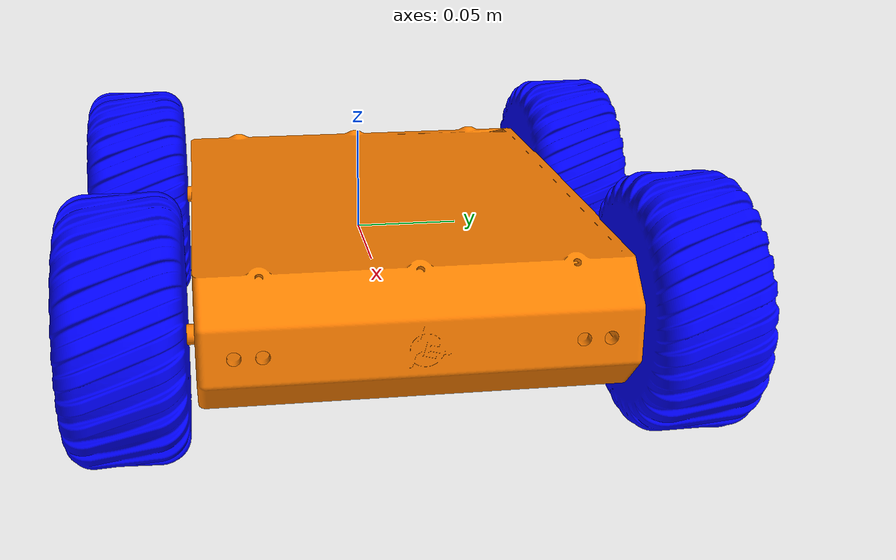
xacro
<?xml version="1.0"?>
<robot xmlns:xacro="http://www.ros.org/wiki/xacro" name="my_custom_robot_mobile_base">

  <!-- Inclusion des macros d'inertie -->
  <xacro:include filename="$(find my_custom_robot)/urdf/inertial_macros.xacro"/>

  <!-- Paramètres châssis -->
  <xacro:property name="chassis_length"      value="0.254"/>
  <xacro:property name="chassis_width"       value="0.203"/>
  <xacro:property name="chassis_height"      value="0.0602"/>
  <xacro:property name="chassis_mass"        value="1.0"/>

  <!-- Paramètres roues -->
  <xacro:property name="wheel_radius"        value="0.033"/>
  <xacro:property name="wheel_thickness"     value="0.026"/>
  <xacro:property name="wheel_mass"          value="0.05"/>

  <xacro:property name="wheel_offset_x"      value="0.12"/>
  <xacro:property name="wheel_offset_y"      value="0.125"/>
  <xacro:property name="wheel_offset_z"      value="0.03"/>

  <xacro:property name="pi" value="3.14159265359"/>

  <!-- Matériaux -->
  <material name="orange"><color rgba="1.0 0.5 0.0 1.0"/></material>
  <material name="blue"><color rgba="0.0 0.0 1.0 1.0"/></material>
  <material name="grey"><color rgba="0.5 0.5 0.5 1.0"/></material>

  <!-- Lien de base -->
  <link name="base_link"/>

  <!-- Châssis -->
  <joint name="chassis_joint" type="fixed">
    <parent link="base_link"/>
    <child link="chassis"/>
    <origin xyz="${-wheel_offset_x} 0 ${-wheel_offset_z}"/>
  </joint>

  <link name="chassis">
    <xacro:inertial_box mass="${chassis_mass}" sx="${chassis_length}" sy="${chassis_width}" sz="${chassis_height}">
      <origin xyz="${chassis_length/2} 0 ${chassis_height/2}" rpy="0 0 0"/>
    </xacro:inertial_box>
    <visual>
      <origin xyz="${chassis_length/2} 0 ${chassis_height/2}" rpy="0 0 0"/>
      <geometry>
        <mesh filename="file://$(find my_custom_robot)/meshes/body.dae"/>
      </geometry>
      <material name="orange"/>
    </visual>
    <collision>
      <origin xyz="${chassis_length/2} 0 ${chassis_height/2}" rpy="0 0 0"/>
      <geometry>
        <box size="${chassis_length} ${chassis_width} ${chassis_height}"/>
      </geometry>
    </collision>
  </link>

  <!-- Roue avant gauche -->
  <joint name="left_up_wheel_joint" type="continuous">
    <parent link="base_link"/>
    <child link="left_up_wheel"/>
    <origin xyz="${wheel_offset_x} ${wheel_offset_y} 0" rpy="-${pi/2} 0 0" />
    <axis xyz="0 0 1"/>
    <dynamics damping="0.1" friction="0.0"/>
    <limit effort="10.0" velocity="100.0"/>
  </joint>
  <link name="left_up_wheel">
    <xacro:inertial_cylinder mass="${wheel_mass}" length="${wheel_thickness}" radius="${wheel_radius}">
      <origin xyz="0 0 0" rpy="0 0 0"/>
    </xacro:inertial_cylinder>
    <visual>
      <geometry>
        <mesh filename="file://$(find my_custom_robot)/meshes/wheel4.dae"/>
      </geometry>
      <material name="blue"/>
    </visual>
    <collision>
      <geometry>
        <cylinder radius="${wheel_radius}" length="${wheel_thickness}"/>
      </geometry>
    </collision>
  </link>

  <!-- Roue avant droite -->
  <joint name="right_up_wheel_joint" type="continuous">
    <parent link="base_link"/>
    <child link="right_up_wheel"/>
    <origin xyz="${wheel_offset_x} ${-wheel_offset_y+0.013} 0" rpy="${pi/2} 0 0" />
    <axis xyz="0 0 -1"/>
    <dynamics damping="0.1" friction="0.0"/>
    <limit effort="10.0" velocity="100.0"/>
  </joint>
  <link name="right_up_wheel">
    <xacro:inertial_cylinder mass="${wheel_mass}" length="${wheel_thickness}" radius="${wheel_radius}">
      <origin xyz="0 0 0" rpy="0 0 0"/>
    </xacro:inertial_cylinder>
    <visual>
      <geometry>
        <mesh filename="file://$(find my_custom_robot)/meshes/wheel1.dae"/>
      </geometry>
      <material name="blue"/>
    </visual>
    <collision>
      <geometry>
        <cylinder radius="${wheel_radius}" length="${wheel_thickness}"/>
      </geometry>
    </collision>
  </link>

  <!-- Roue arrière gauche -->
  <joint name="left_down_wheel_joint" type="continuous">
    <parent link="base_link"/>
    <child link="left_down_wheel"/>
    <origin xyz="${-wheel_offset_x+0.05} ${wheel_offset_y} 0" rpy="-${pi/2} 0 0" />
    <axis xyz="0 0 1"/>
    <dynamics damping="0.1" friction="0.0"/>
    <limit effort="10.0" velocity="100.0"/>
  </joint>
  <link name="left_down_wheel">
    <xacro:inertial_cylinder mass="${wheel_mass}" length="${wheel_thickness}" radius="${wheel_radius}">
      <origin xyz="0 0 0" rpy="0 0 0"/>
    </xacro:inertial_cylinder>
    <visual>
      <geometry>
        <mesh filename="file://$(find my_custom_robot)/meshes/wheel2.dae"/>
      </geometry>
      <material name="blue"/>
    </visual>
    <collision>
      <geometry>
        <cylinder radius="${wheel_radius}" length="${wheel_thickness}"/>
      </geometry>
    </collision>
  </link>

  <!-- Roue arrière droite -->
  <joint name="right_down_wheel_joint" type="continuous">
    <parent link="base_link"/>
    <child link="right_down_wheel"/>
    <origin xyz="${-wheel_offset_x+0.05} ${-wheel_offset_y+0.013} 0" rpy="${pi/2} 0 0" />
    <axis xyz="0 0 -1"/>
    <dynamics damping="0.1" friction="0.0"/>
    <limit effort="10.0" velocity="100.0"/>
  </joint>
  <link name="right_down_wheel">
    <xacro:inertial_cylinder mass="${wheel_mass}" length="${wheel_thickness}" radius="${wheel_radius}">
      <origin xyz="0 0 0" rpy="0 0 0"/>
    </xacro:inertial_cylinder>
    <visual>
      <geometry>
        <mesh filename="file://$(find my_custom_robot)/meshes/wheel3.dae"/>
      </geometry>
      <material name="blue"/>
    </visual>
    <collision>
      <geometry>
        <cylinder radius="${wheel_radius}" length="${wheel_thickness}"/>
      </geometry>
    </collision>
  </link>

  <!-- ros2_control uniquement pour les roues -->
  <ros2_control name="RobotSystem" type="system">
    <hardware>
      <plugin>gazebo_ros2_control/GazeboSystem</plugin>
    </hardware>
    <joint name="left_up_wheel_joint">
      <command_interface name="velocity"/>
      <state_interface name="position"/>
      <state_interface name="velocity"/>
    </joint>
    <joint name="right_up_wheel_joint">
      <command_interface name="velocity"/>
      <state_interface name="position"/>
      <state_interface name="velocity"/>
    </joint>
    <joint name="left_down_wheel_joint">
      <command_interface name="velocity"/>
      <state_interface name="position"/>
      <state_interface name="velocity"/>
    </joint>
    <joint name="right_down_wheel_joint">
      <command_interface name="velocity"/>
      <state_interface name="position"/>
      <state_interface name="velocity"/>
    </joint>
  </ros2_control>

  <!-- Plugin Gazebo ros2_control -->
  <gazebo>
    <plugin filename="libgazebo_ros2_control.so" name="gazebo_ros2_control">
      <parameters>$(find my_custom_robot)/config/controllers.yaml</parameters>
    </plugin>
  </gazebo>

  <!-- Friction des roues -->
  <gazebo reference="left_up_wheel"><mu1>1.2</mu1><mu2>1.2</mu2></gazebo>
  <gazebo reference="right_up_wheel"><mu1>1.2</mu1><mu2>1.2</mu2></gazebo>
  <gazebo reference="left_down_wheel"><mu1>1.2</mu1><mu2>1.2</mu2></gazebo>
  <gazebo reference="right_down_wheel"><mu1>1.2</mu1><mu2>1.2</mu2></gazebo>

  <!-- Matériaux Gazebo -->
  <gazebo reference="chassis"><material>Gazebo/Orange</material></gazebo>
</robot>

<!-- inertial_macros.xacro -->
<robot xmlns:xacro="http://www.ros.org/wiki/xacro" name="inertial_macros">
  <!-- Inertie d'un cylindre (axe longitudinal Z) -->
  <xacro:macro name="inertial_cylinder" params="mass length radius *origin">
    <inertial>
      <xacro:insert_block name="origin"/>
      <mass value="${mass}"/>
      <inertia
        ixx="${(1.0/12.0)*mass*(3*radius*radius + length*length)}"
        iyy="${(1.0/12.0)*mass*(3*radius*radius + length*length)}"
        izz="${0.5*mass*radius*radius}"
        ixy="0" ixz="0" iyz="0"/>
    </inertial>
  </xacro:macro>

  <!-- Inertie d'une boîte axis-aligned -->
  <xacro:macro name="inertial_box" params="mass sx sy sz *origin">
    <inertial>
      <xacro:insert_block name="origin"/>
      <mass value="${mass}"/>
      <inertia
        ixx="${(1.0/12.0)*mass*(sy*sy + sz*sz)}"
        iyy="${(1.0/12.0)*mass*(sx*sx + sz*sz)}"
        izz="${(1.0/12.0)*mass*(sx*sx + sy*sy)}"
        ixy="0" ixz="0" iyz="0"/>
    </inertial>
  </xacro:macro>
</robot>
